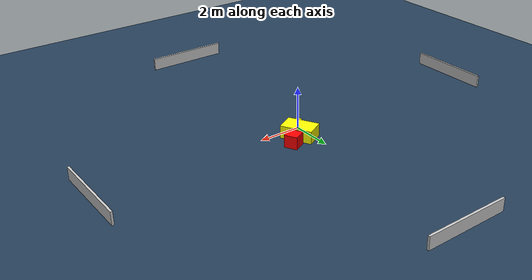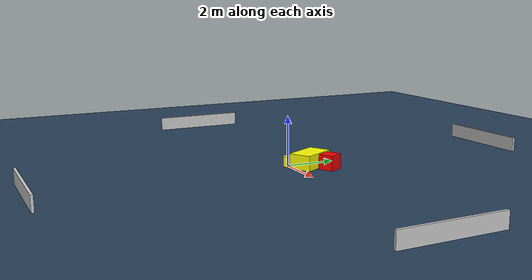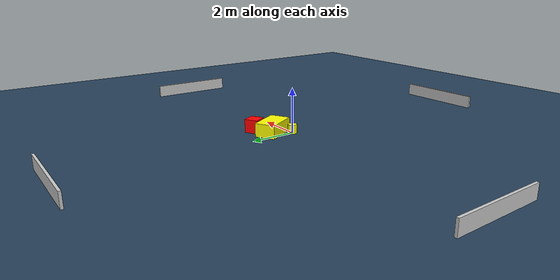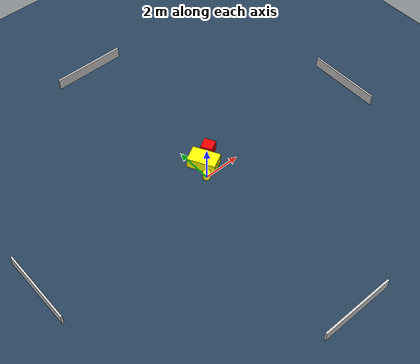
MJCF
<?xml version="1.0" ?>
<mujoco model="generated_environment">
  <option timestep="0.01" integrator="RK4" cone="elliptic"/>
  <default>
    <geom density="1"/>
  </default>
  <asset>
    <texture builtin="gradient" height="3072" name="skybox" rgb1="0.3 0.5 0.7" rgb2="0 0 0" type="skybox" width="512"/>
    <texture builtin="checker" height="300" name="groundplane" rgb1="0.2 0.3 0.4" rgb2="0.1 0.2 0.3" type="2d" width="300"/>
    <material name="groundplane" reflectance="0.2" texrepeat="5 5" texture="groundplane"/>
  </asset>
  <worldbody>
    <light dir="0 0 -1" directional="true" pos="0 0 1.5"/>
    <geom condim="3" friction="0.5 0.005 0.001" material="groundplane" name="floor" pos="0 0 0" size="0 0 0.05" type="plane"/>
    <body name="walls">
      <geom name="wall_1" condim="4" pos="-10.0 0.0 0.3" rgba="0.800000011920929 0.800000011920929 0.800000011920929 1.0" size="0.05 2.0 0.3" type="box"/>
      <geom name="wall_2" condim="4" pos="10.0 0.0 0.3" rgba="0.800000011920929 0.800000011920929 0.800000011920929 1.0" size="0.05 2.0 0.3" type="box"/>
      <geom name="wall_3" condim="4" pos="0.0 -10.0 0.3" rgba="0.800000011920929 0.800000011920929 0.800000011920929 1.0" size="2.0 0.05 0.3" type="box"/>
      <geom name="wall_4" condim="4" pos="0.0 10.0 0.3" rgba="0.800000011920929 0.800000011920929 0.800000011920929 1.0" size="2.0 0.05 0.3" type="box"/>
    </body>
    <body name="robot">
      <joint name="joint_x" type="slide" pos="0 0 0" axis="1 0 0"/>
      <joint name="joint_y" type="slide" pos="0 0 0" axis="0 1 0"/>
      <geom name="robot" type="cylinder" pos="0.0 0.0 0.2" size="0.2 0.2 0.0" mass="5.0" friction="1.0 0.005 0.0001" condim="4" rgba="1.0 1.0 0.0 1.0"/>
    </body>
    <body name="obstacle_1_movable">
      <geom name="obstacle_1_movable" condim="4" pos="0.45001932619903023 0.7386549411824512 0.3" euler="0 0 118.53062279293671" friction="0.0 0.005 0.001" rgba="1.0 1.0 0.0 1.0" size="0.7491172381957742 0.45569149281906435 0.3" type="box" mass="0.1"/>
      <joint type="free"/>
    </body>
    <body name="obstacle_2_static">
      <geom name="obstacle_2_static" condim="4" pos="1.1701939612336998 1.225291691289151 0.3" euler="0 0 207.50314863922753" friction="0.0 0.005 0.001" rgba="1.0 0.0 0.0 1.0" size="0.30662517629505315 0.3099063621488795 0.3" type="box"/>
    </body>
  </worldbody>
  <actuator>
    <motor name="actuator_x" joint="joint_x" gear="1" ctrlrange="-1 1"/>
    <motor name="actuator_y" joint="joint_y" gear="1" ctrlrange="-1 1"/>
  </actuator>
</mujoco>
